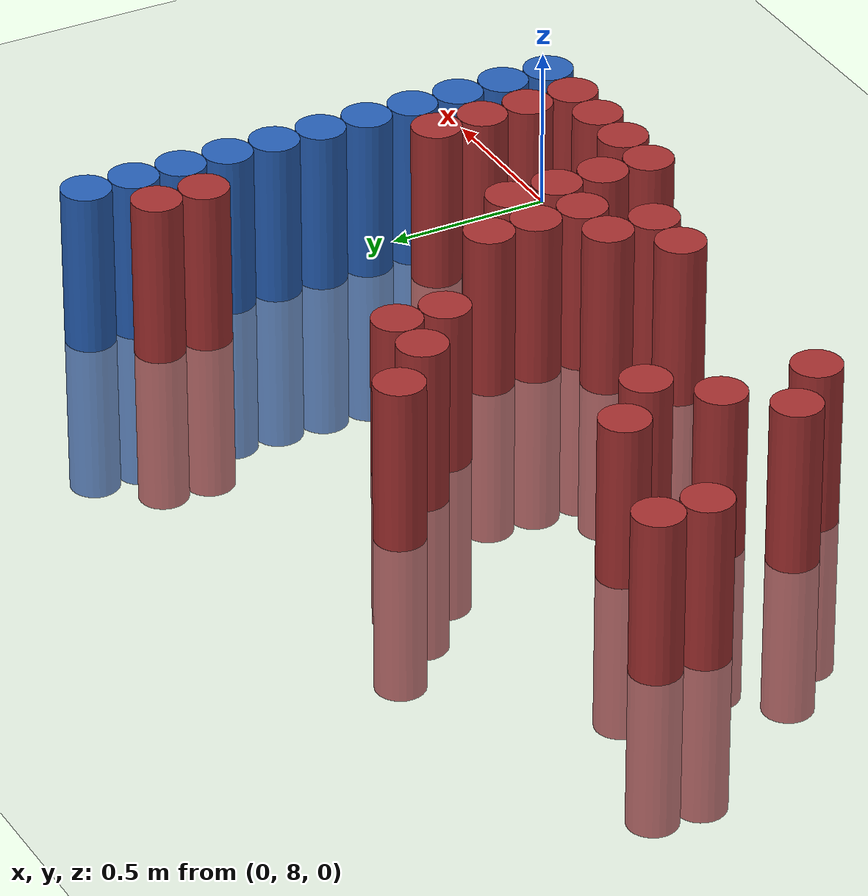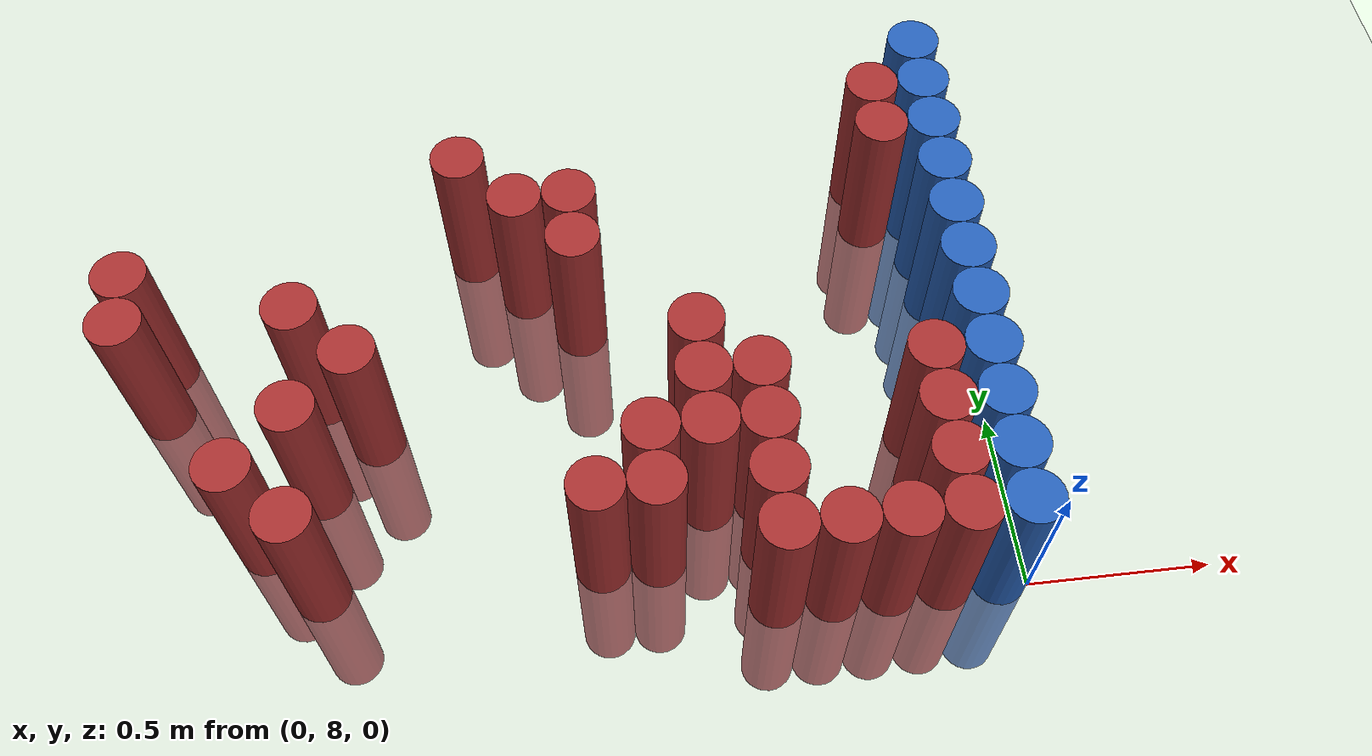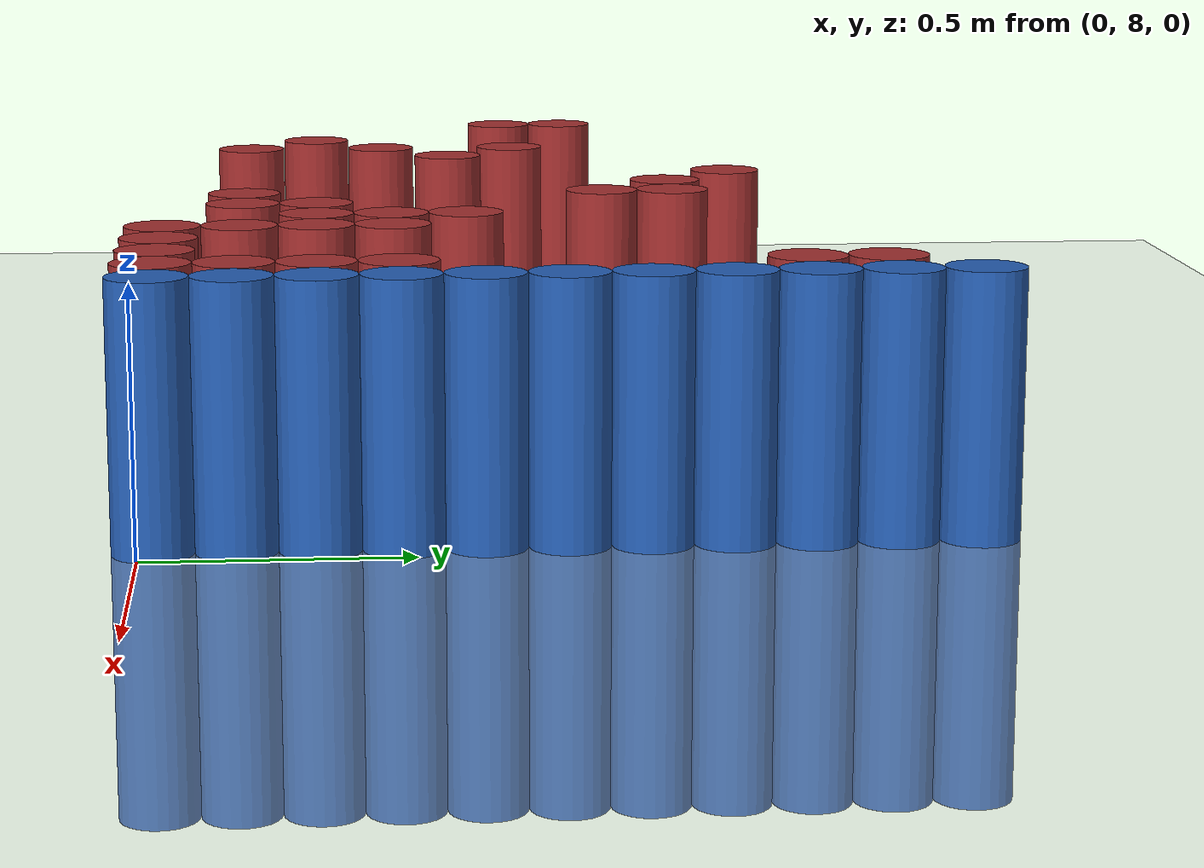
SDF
<sdf version="1.6">
 <world name="default">
  <model name="ground_plane">
   <static>1</static>
   <link name="link">
    <collision name="collision">
     <geometry><plane><normal>0 0 1</normal><size>100 100</size></plane></geometry>
     <surface><friction><ode><mu>100</mu><mu2>50</mu2></ode></friction></surface>
    </collision>
    <visual name="visual">
     <cast_shadows>0</cast_shadows>
     <geometry><plane><normal>0 0 1</normal><size>100 100</size></plane></geometry>
     <material>
      <script><uri>file://media/materials/scripts/gazebo.material</uri><name>Gazebo/Grey</name></script>
     </material>
    </visual>
   </link>
  </model>
  <model name="unit_cylinder_225">
   <static>1</static>
   <pose>-2.325000 8.775000 0.000000 0.000000 0.000000 0.000000</pose>
   <link name="link">
    <inertial>
     <mass>1</mass>
     <inertia><ixx>0.145833</ixx><ixy>0</ixy><ixz>0</ixz><iyy>0.145833</iyy><iyz>0</iyz><izz>0.125</izz></inertia>
    </inertial>
    <collision name="collision">
     <geometry><cylinder><radius>0.075000</radius><length>1</length></cylinder></geometry>
    </collision>
    <visual name="visual">
     <geometry><cylinder><radius>0.075000</radius><length>1</length></cylinder></geometry>
     <material>
      <ambient>0.648000 0.192000 0.192000 1</ambient>
      <diffuse>0.648000 0.192000 0.192000 1</diffuse>
     </material>
     <material>
      <script><name>Gazebo/Grey</name><uri>file://media/materials/scripts/gazebo.material</uri></script>
     </material>
    </visual>
    <sensor name="sensor_contact" type="contact"><contact><collision>collision</collision></contact></sensor>
   </link>
   <plugin filename="gz-sim-touchplugin-system" name="gz::sim::systems::TouchPlugin">
    <target>robot</target>
    <namespace>robot</namespace>
    <time>0.001</time>
    <enabled>true</enabled>
   </plugin>
  </model>
  <model name="unit_cylinder_226">
   <static>1</static>
   <pose>-2.325000 8.925000 0.000000 0.000000 0.000000 0.000000</pose>
   <link name="link">
    <inertial>
     <mass>1</mass>
     <inertia><ixx>0.145833</ixx><ixy>0</ixy><ixz>0</ixz><iyy>0.145833</iyy><iyz>0</iyz><izz>0.125</izz></inertia>
    </inertial>
    <collision name="collision">
     <geometry><cylinder><radius>0.075000</radius><length>1</length></cylinder></geometry>
    </collision>
    <visual name="visual">
     <geometry><cylinder><radius>0.075000</radius><length>1</length></cylinder></geometry>
     <material>
      <ambient>0.648000 0.192000 0.192000 1</ambient>
      <diffuse>0.648000 0.192000 0.192000 1</diffuse>
     </material>
     <material>
      <script><name>Gazebo/Grey</name><uri>file://media/materials/scripts/gazebo.material</uri></script>
     </material>
    </visual>
    <sensor name="sensor_contact" type="contact"><contact><collision>collision</collision></contact></sensor>
   </link>
   <plugin filename="gz-sim-touchplugin-system" name="gz::sim::systems::TouchPlugin">
    <target>robot</target>
    <namespace>robot</namespace>
    <time>0.001</time>
    <enabled>true</enabled>
   </plugin>
  </model>
  <model name="unit_cylinder_231">
   <static>1</static>
   <pose>-2.025000 8.325000 0.000000 0.000000 0.000000 0.000000</pose>
   <link name="link">
    <inertial>
     <mass>1</mass>
     <inertia><ixx>0.145833</ixx><ixy>0</ixy><ixz>0</ixz><iyy>0.145833</iyy><iyz>0</iyz><izz>0.125</izz></inertia>
    </inertial>
    <collision name="collision">
     <geometry><cylinder><radius>0.075000</radius><length>1</length></cylinder></geometry>
    </collision>
    <visual name="visual">
     <geometry><cylinder><radius>0.075000</radius><length>1</length></cylinder></geometry>
     <material>
      <ambient>0.648000 0.192000 0.192000 1</ambient>
      <diffuse>0.648000 0.192000 0.192000 1</diffuse>
     </material>
     <material>
      <script><name>Gazebo/Grey</name><uri>file://media/materials/scripts/gazebo.material</uri></script>
     </material>
    </visual>
    <sensor name="sensor_contact" type="contact"><contact><collision>collision</collision></contact></sensor>
   </link>
   <plugin filename="gz-sim-touchplugin-system" name="gz::sim::systems::TouchPlugin">
    <target>robot</target>
    <namespace>robot</namespace>
    <time>0.001</time>
    <enabled>true</enabled>
   </plugin>
  </model>
  <model name="unit_cylinder_234">
   <static>1</static>
   <pose>-1.875000 8.175000 0.000000 0.000000 0.000000 0.000000</pose>
   <link name="link">
    <inertial>
     <mass>1</mass>
     <inertia><ixx>0.145833</ixx><ixy>0</ixy><ixz>0</ixz><iyy>0.145833</iyy><iyz>0</iyz><izz>0.125</izz></inertia>
    </inertial>
    <collision name="collision">
     <geometry><cylinder><radius>0.075000</radius><length>1</length></cylinder></geometry>
    </collision>
    <visual name="visual">
     <geometry><cylinder><radius>0.075000</radius><length>1</length></cylinder></geometry>
     <material>
      <ambient>0.648000 0.192000 0.192000 1</ambient>
      <diffuse>0.648000 0.192000 0.192000 1</diffuse>
     </material>
     <material>
      <script><name>Gazebo/Grey</name><uri>file://media/materials/scripts/gazebo.material</uri></script>
     </material>
    </visual>
    <sensor name="sensor_contact" type="contact"><contact><collision>collision</collision></contact></sensor>
   </link>
   <plugin filename="gz-sim-touchplugin-system" name="gz::sim::systems::TouchPlugin">
    <target>robot</target>
    <namespace>robot</namespace>
    <time>0.001</time>
    <enabled>true</enabled>
   </plugin>
  </model>
  <model name="unit_cylinder_235">
   <static>1</static>
   <pose>-1.875000 8.475000 0.000000 0.000000 0.000000 0.000000</pose>
   <link name="link">
    <inertial>
     <mass>1</mass>
     <inertia><ixx>0.145833</ixx><ixy>0</ixy><ixz>0</ixz><iyy>0.145833</iyy><iyz>0</iyz><izz>0.125</izz></inertia>
    </inertial>
    <collision name="collision">
     <geometry><cylinder><radius>0.075000</radius><length>1</length></cylinder></geometry>
    </collision>
    <visual name="visual">
     <geometry><cylinder><radius>0.075000</radius><length>1</length></cylinder></geometry>
     <material>
      <ambient>0.648000 0.192000 0.192000 1</ambient>
      <diffuse>0.648000 0.192000 0.192000 1</diffuse>
     </material>
     <material>
      <script><name>Gazebo/Grey</name><uri>file://media/materials/scripts/gazebo.material</uri></script>
     </material>
    </visual>
    <sensor name="sensor_contact" type="contact"><contact><collision>collision</collision></contact></sensor>
   </link>
   <plugin filename="gz-sim-touchplugin-system" name="gz::sim::systems::TouchPlugin">
    <target>robot</target>
    <namespace>robot</namespace>
    <time>0.001</time>
    <enabled>true</enabled>
   </plugin>
  </model>
  <model name="unit_cylinder_236">
   <static>1</static>
   <pose>-1.875000 8.775000 0.000000 0.000000 0.000000 0.000000</pose>
   <link name="link">
    <inertial>
     <mass>1</mass>
     <inertia><ixx>0.145833</ixx><ixy>0</ixy><ixz>0</ixz><iyy>0.145833</iyy><iyz>0</iyz><izz>0.125</izz></inertia>
    </inertial>
    <collision name="collision">
     <geometry><cylinder><radius>0.075000</radius><length>1</length></cylinder></geometry>
    </collision>
    <visual name="visual">
     <geometry><cylinder><radius>0.075000</radius><length>1</length></cylinder></geometry>
     <material>
      <ambient>0.648000 0.192000 0.192000 1</ambient>
      <diffuse>0.648000 0.192000 0.192000 1</diffuse>
     </material>
     <material>
      <script><name>Gazebo/Grey</name><uri>file://media/materials/scripts/gazebo.material</uri></script>
     </material>
    </visual>
    <sensor name="sensor_contact" type="contact"><contact><collision>collision</collision></contact></sensor>
   </link>
   <plugin filename="gz-sim-touchplugin-system" name="gz::sim::systems::TouchPlugin">
    <target>robot</target>
    <namespace>robot</namespace>
    <time>0.001</time>
    <enabled>true</enabled>
   </plugin>
  </model>
  <model name="unit_cylinder_240">
   <static>1</static>
   <pose>-1.725000 8.625000 0.000000 0.000000 0.000000 0.000000</pose>
   <link name="link">
    <inertial>
     <mass>1</mass>
     <inertia><ixx>0.145833</ixx><ixy>0</ixy><ixz>0</ixz><iyy>0.145833</iyy><iyz>0</iyz><izz>0.125</izz></inertia>
    </inertial>
    <collision name="collision">
     <geometry><cylinder><radius>0.075000</radius><length>1</length></cylinder></geometry>
    </collision>
    <visual name="visual">
     <geometry><cylinder><radius>0.075000</radius><length>1</length></cylinder></geometry>
     <material>
      <ambient>0.648000 0.192000 0.192000 1</ambient>
      <diffuse>0.648000 0.192000 0.192000 1</diffuse>
     </material>
     <material>
      <script><name>Gazebo/Grey</name><uri>file://media/materials/scripts/gazebo.material</uri></script>
     </material>
    </visual>
    <sensor name="sensor_contact" type="contact"><contact><collision>collision</collision></contact></sensor>
   </link>
   <plugin filename="gz-sim-touchplugin-system" name="gz::sim::systems::TouchPlugin">
    <target>robot</target>
    <namespace>robot</namespace>
    <time>0.001</time>
    <enabled>true</enabled>
   </plugin>
  </model>
  <model name="unit_cylinder_244">
   <static>1</static>
   <pose>-1.425000 9.225000 0.000000 0.000000 0.000000 0.000000</pose>
   <link name="link">
    <inertial>
     <mass>1</mass>
     <inertia><ixx>0.145833</ixx><ixy>0</ixy><ixz>0</ixz><iyy>0.145833</iyy><iyz>0</iyz><izz>0.125</izz></inertia>
    </inertial>
    <collision name="collision">
     <geometry><cylinder><radius>0.075000</radius><length>1</length></cylinder></geometry>
    </collision>
    <visual name="visual">
     <geometry><cylinder><radius>0.075000</radius><length>1</length></cylinder></geometry>
     <material>
      <ambient>0.648000 0.192000 0.192000 1</ambient>
      <diffuse>0.648000 0.192000 0.192000 1</diffuse>
     </material>
     <material>
      <script><name>Gazebo/Grey</name><uri>file://media/materials/scripts/gazebo.material</uri></script>
     </material>
    </visual>
    <sensor name="sensor_contact" type="contact"><contact><collision>collision</collision></contact></sensor>
   </link>
   <plugin filename="gz-sim-touchplugin-system" name="gz::sim::systems::TouchPlugin">
    <target>robot</target>
    <namespace>robot</namespace>
    <time>0.001</time>
    <enabled>true</enabled>
   </plugin>
  </model>
  <model name="unit_cylinder_249">
   <static>1</static>
   <pose>-1.275000 9.075000 0.000000 0.000000 0.000000 0.000000</pose>
   <link name="link">
    <inertial>
     <mass>1</mass>
     <inertia><ixx>0.145833</ixx><ixy>0</ixy><ixz>0</ixz><iyy>0.145833</iyy><iyz>0</iyz><izz>0.125</izz></inertia>
    </inertial>
    <collision name="collision">
     <geometry><cylinder><radius>0.075000</radius><length>1</length></cylinder></geometry>
    </collision>
    <visual name="visual">
     <geometry><cylinder><radius>0.075000</radius><length>1</length></cylinder></geometry>
     <material>
      <ambient>0.648000 0.192000 0.192000 1</ambient>
      <diffuse>0.648000 0.192000 0.192000 1</diffuse>
     </material>
     <material>
      <script><name>Gazebo/Grey</name><uri>file://media/materials/scripts/gazebo.material</uri></script>
     </material>
    </visual>
    <sensor name="sensor_contact" type="contact"><contact><collision>collision</collision></contact></sensor>
   </link>
   <plugin filename="gz-sim-touchplugin-system" name="gz::sim::systems::TouchPlugin">
    <target>robot</target>
    <namespace>robot</namespace>
    <time>0.001</time>
    <enabled>true</enabled>
   </plugin>
  </model>
  <model name="unit_cylinder_253">
   <static>1</static>
   <pose>-1.125000 8.175000 0.000000 0.000000 0.000000 0.000000</pose>
   <link name="link">
    <inertial>
     <mass>1</mass>
     <inertia><ixx>0.145833</ixx><ixy>0</ixy><ixz>0</ixz><iyy>0.145833</iyy><iyz>0</iyz><izz>0.125</izz></inertia>
    </inertial>
    <collision name="collision">
     <geometry><cylinder><radius>0.075000</radius><length>1</length></cylinder></geometry>
    </collision>
    <visual name="visual">
     <geometry><cylinder><radius>0.075000</radius><length>1</length></cylinder></geometry>
     <material>
      <ambient>0.648000 0.192000 0.192000 1</ambient>
      <diffuse>0.648000 0.192000 0.192000 1</diffuse>
     </material>
     <material>
      <script><name>Gazebo/Grey</name><uri>file://media/materials/scripts/gazebo.material</uri></script>
     </material>
    </visual>
    <sensor name="sensor_contact" type="contact"><contact><collision>collision</collision></contact></sensor>
   </link>
   <plugin filename="gz-sim-touchplugin-system" name="gz::sim::systems::TouchPlugin">
    <target>robot</target>
    <namespace>robot</namespace>
    <time>0.001</time>
    <enabled>true</enabled>
   </plugin>
  </model>
  <model name="unit_cylinder_254">
   <static>1</static>
   <pose>-1.125000 8.925000 0.000000 0.000000 0.000000 0.000000</pose>
   <link name="link">
    <inertial>
     <mass>1</mass>
     <inertia><ixx>0.145833</ixx><ixy>0</ixy><ixz>0</ixz><iyy>0.145833</iyy><iyz>0</iyz><izz>0.125</izz></inertia>
    </inertial>
    <collision name="collision">
     <geometry><cylinder><radius>0.075000</radius><length>1</length></cylinder></geometry>
    </collision>
    <visual name="visual">
     <geometry><cylinder><radius>0.075000</radius><length>1</length></cylinder></geometry>
     <material>
      <ambient>0.648000 0.192000 0.192000 1</ambient>
      <diffuse>0.648000 0.192000 0.192000 1</diffuse>
     </material>
     <material>
      <script><name>Gazebo/Grey</name><uri>file://media/materials/scripts/gazebo.material</uri></script>
     </material>
    </visual>
    <sensor name="sensor_contact" type="contact"><contact><collision>collision</collision></contact></sensor>
   </link>
   <plugin filename="gz-sim-touchplugin-system" name="gz::sim::systems::TouchPlugin">
    <target>robot</target>
    <namespace>robot</namespace>
    <time>0.001</time>
    <enabled>true</enabled>
   </plugin>
  </model>
  <model name="unit_cylinder_255">
   <static>1</static>
   <pose>-1.125000 9.075000 0.000000 0.000000 0.000000 0.000000</pose>
   <link name="link">
    <inertial>
     <mass>1</mass>
     <inertia><ixx>0.145833</ixx><ixy>0</ixy><ixz>0</ixz><iyy>0.145833</iyy><iyz>0</iyz><izz>0.125</izz></inertia>
    </inertial>
    <collision name="collision">
     <geometry><cylinder><radius>0.075000</radius><length>1</length></cylinder></geometry>
    </collision>
    <visual name="visual">
     <geometry><cylinder><radius>0.075000</radius><length>1</length></cylinder></geometry>
     <material>
      <ambient>0.648000 0.192000 0.192000 1</ambient>
      <diffuse>0.648000 0.192000 0.192000 1</diffuse>
     </material>
     <material>
      <script><name>Gazebo/Grey</name><uri>file://media/materials/scripts/gazebo.material</uri></script>
     </material>
    </visual>
    <sensor name="sensor_contact" type="contact"><contact><collision>collision</collision></contact></sensor>
   </link>
   <plugin filename="gz-sim-touchplugin-system" name="gz::sim::systems::TouchPlugin">
    <target>robot</target>
    <namespace>robot</namespace>
    <time>0.001</time>
    <enabled>true</enabled>
   </plugin>
  </model>
  <model name="unit_cylinder_258">
   <static>1</static>
   <pose>-0.975000 8.175000 0.000000 0.000000 0.000000 0.000000</pose>
   <link name="link">
    <inertial>
     <mass>1</mass>
     <inertia><ixx>0.145833</ixx><ixy>0</ixy><ixz>0</ixz><iyy>0.145833</iyy><iyz>0</iyz><izz>0.125</izz></inertia>
    </inertial>
    <collision name="collision">
     <geometry><cylinder><radius>0.075000</radius><length>1</length></cylinder></geometry>
    </collision>
    <visual name="visual">
     <geometry><cylinder><radius>0.075000</radius><length>1</length></cylinder></geometry>
     <material>
      <ambient>0.648000 0.192000 0.192000 1</ambient>
      <diffuse>0.648000 0.192000 0.192000 1</diffuse>
     </material>
     <material>
      <script><name>Gazebo/Grey</name><uri>file://media/materials/scripts/gazebo.material</uri></script>
     </material>
    </visual>
    <sensor name="sensor_contact" type="contact"><contact><collision>collision</collision></contact></sensor>
   </link>
   <plugin filename="gz-sim-touchplugin-system" name="gz::sim::systems::TouchPlugin">
    <target>robot</target>
    <namespace>robot</namespace>
    <time>0.001</time>
    <enabled>true</enabled>
   </plugin>
  </model>
  <model name="unit_cylinder_259">
   <static>1</static>
   <pose>-0.975000 8.325000 0.000000 0.000000 0.000000 0.000000</pose>
   <link name="link">
    <inertial>
     <mass>1</mass>
     <inertia><ixx>0.145833</ixx><ixy>0</ixy><ixz>0</ixz><iyy>0.145833</iyy><iyz>0</iyz><izz>0.125</izz></inertia>
    </inertial>
    <collision name="collision">
     <geometry><cylinder><radius>0.075000</radius><length>1</length></cylinder></geometry>
    </collision>
    <visual name="visual">
     <geometry><cylinder><radius>0.075000</radius><length>1</length></cylinder></geometry>
     <material>
      <ambient>0.648000 0.192000 0.192000 1</ambient>
      <diffuse>0.648000 0.192000 0.192000 1</diffuse>
     </material>
     <material>
      <script><name>Gazebo/Grey</name><uri>file://media/materials/scripts/gazebo.material</uri></script>
     </material>
    </visual>
    <sensor name="sensor_contact" type="contact"><contact><collision>collision</collision></contact></sensor>
   </link>
   <plugin filename="gz-sim-touchplugin-system" name="gz::sim::systems::TouchPlugin">
    <target>robot</target>
    <namespace>robot</namespace>
    <time>0.001</time>
    <enabled>true</enabled>
   </plugin>
  </model>
  <model name="unit_cylinder_263">
   <static>1</static>
   <pose>-0.825000 8.325000 0.000000 0.000000 0.000000 0.000000</pose>
   <link name="link">
    <inertial>
     <mass>1</mass>
     <inertia><ixx>0.145833</ixx><ixy>0</ixy><ixz>0</ixz><iyy>0.145833</iyy><iyz>0</iyz><izz>0.125</izz></inertia>
    </inertial>
    <collision name="collision">
     <geometry><cylinder><radius>0.075000</radius><length>1</length></cylinder></geometry>
    </collision>
    <visual name="visual">
     <geometry><cylinder><radius>0.075000</radius><length>1</length></cylinder></geometry>
     <material>
      <ambient>0.648000 0.192000 0.192000 1</ambient>
      <diffuse>0.648000 0.192000 0.192000 1</diffuse>
     </material>
     <material>
      <script><name>Gazebo/Grey</name><uri>file://media/materials/scripts/gazebo.material</uri></script>
     </material>
    </visual>
    <sensor name="sensor_contact" type="contact"><contact><collision>collision</collision></contact></sensor>
   </link>
   <plugin filename="gz-sim-touchplugin-system" name="gz::sim::systems::TouchPlugin">
    <target>robot</target>
    <namespace>robot</namespace>
    <time>0.001</time>
    <enabled>true</enabled>
   </plugin>
  </model>
  <model name="unit_cylinder_264">
   <static>1</static>
   <pose>-0.825000 8.475000 0.000000 0.000000 0.000000 0.000000</pose>
   <link name="link">
    <inertial>
     <mass>1</mass>
     <inertia><ixx>0.145833</ixx><ixy>0</ixy><ixz>0</ixz><iyy>0.145833</iyy><iyz>0</iyz><izz>0.125</izz></inertia>
    </inertial>
    <collision name="collision">
     <geometry><cylinder><radius>0.075000</radius><length>1</length></cylinder></geometry>
    </collision>
    <visual name="visual">
     <geometry><cylinder><radius>0.075000</radius><length>1</length></cylinder></geometry>
     <material>
      <ambient>0.648000 0.192000 0.192000 1</ambient>
      <diffuse>0.648000 0.192000 0.192000 1</diffuse>
     </material>
     <material>
      <script><name>Gazebo/Grey</name><uri>file://media/materials/scripts/gazebo.material</uri></script>
     </material>
    </visual>
    <sensor name="sensor_contact" type="contact"><contact><collision>collision</collision></contact></sensor>
   </link>
   <plugin filename="gz-sim-touchplugin-system" name="gz::sim::systems::TouchPlugin">
    <target>robot</target>
    <namespace>robot</namespace>
    <time>0.001</time>
    <enabled>true</enabled>
   </plugin>
  </model>
  <model name="unit_cylinder_265">
   <static>1</static>
   <pose>-0.825000 8.625000 0.000000 0.000000 0.000000 0.000000</pose>
   <link name="link">
    <inertial>
     <mass>1</mass>
     <inertia><ixx>0.145833</ixx><ixy>0</ixy><ixz>0</ixz><iyy>0.145833</iyy><iyz>0</iyz><izz>0.125</izz></inertia>
    </inertial>
    <collision name="collision">
     <geometry><cylinder><radius>0.075000</radius><length>1</length></cylinder></geometry>
    </collision>
    <visual name="visual">
     <geometry><cylinder><radius>0.075000</radius><length>1</length></cylinder></geometry>
     <material>
      <ambient>0.648000 0.192000 0.192000 1</ambient>
      <diffuse>0.648000 0.192000 0.192000 1</diffuse>
     </material>
     <material>
      <script><name>Gazebo/Grey</name><uri>file://media/materials/scripts/gazebo.material</uri></script>
     </material>
    </visual>
    <sensor name="sensor_contact" type="contact"><contact><collision>collision</collision></contact></sensor>
   </link>
   <plugin filename="gz-sim-touchplugin-system" name="gz::sim::systems::TouchPlugin">
    <target>robot</target>
    <namespace>robot</namespace>
    <time>0.001</time>
    <enabled>true</enabled>
   </plugin>
  </model>
  <model name="unit_cylinder_268">
   <static>1</static>
   <pose>-0.675000 8.025000 0.000000 0.000000 0.000000 0.000000</pose>
   <link name="link">
    <inertial>
     <mass>1</mass>
     <inertia><ixx>0.145833</ixx><ixy>0</ixy><ixz>0</ixz><iyy>0.145833</iyy><iyz>0</iyz><izz>0.125</izz></inertia>
    </inertial>
    <collision name="collision">
     <geometry><cylinder><radius>0.075000</radius><length>1</length></cylinder></geometry>
    </collision>
    <visual name="visual">
     <geometry><cylinder><radius>0.075000</radius><length>1</length></cylinder></geometry>
     <material>
      <ambient>0.648000 0.192000 0.192000 1</ambient>
      <diffuse>0.648000 0.192000 0.192000 1</diffuse>
     </material>
     <material>
      <script><name>Gazebo/Grey</name><uri>file://media/materials/scripts/gazebo.material</uri></script>
     </material>
    </visual>
    <sensor name="sensor_contact" type="contact"><contact><collision>collision</collision></contact></sensor>
   </link>
   <plugin filename="gz-sim-touchplugin-system" name="gz::sim::systems::TouchPlugin">
    <target>robot</target>
    <namespace>robot</namespace>
    <time>0.001</time>
    <enabled>true</enabled>
   </plugin>
  </model>
  <model name="unit_cylinder_269">
   <static>1</static>
   <pose>-0.675000 8.175000 0.000000 0.000000 0.000000 0.000000</pose>
   <link name="link">
    <inertial>
     <mass>1</mass>
     <inertia><ixx>0.145833</ixx><ixy>0</ixy><ixz>0</ixz><iyy>0.145833</iyy><iyz>0</iyz><izz>0.125</izz></inertia>
    </inertial>
    <collision name="collision">
     <geometry><cylinder><radius>0.075000</radius><length>1</length></cylinder></geometry>
    </collision>
    <visual name="visual">
     <geometry><cylinder><radius>0.075000</radius><length>1</length></cylinder></geometry>
     <material>
      <ambient>0.648000 0.192000 0.192000 1</ambient>
      <diffuse>0.648000 0.192000 0.192000 1</diffuse>
     </material>
     <material>
      <script><name>Gazebo/Grey</name><uri>file://media/materials/scripts/gazebo.material</uri></script>
     </material>
    </visual>
    <sensor name="sensor_contact" type="contact"><contact><collision>collision</collision></contact></sensor>
   </link>
   <plugin filename="gz-sim-touchplugin-system" name="gz::sim::systems::TouchPlugin">
    <target>robot</target>
    <namespace>robot</namespace>
    <time>0.001</time>
    <enabled>true</enabled>
   </plugin>
  </model>
  <model name="unit_cylinder_270">
   <static>1</static>
   <pose>-0.675000 8.325000 0.000000 0.000000 0.000000 0.000000</pose>
   <link name="link">
    <inertial>
     <mass>1</mass>
     <inertia><ixx>0.145833</ixx><ixy>0</ixy><ixz>0</ixz><iyy>0.145833</iyy><iyz>0</iyz><izz>0.125</izz></inertia>
    </inertial>
    <collision name="collision">
     <geometry><cylinder><radius>0.075000</radius><length>1</length></cylinder></geometry>
    </collision>
    <visual name="visual">
     <geometry><cylinder><radius>0.075000</radius><length>1</length></cylinder></geometry>
     <material>
      <ambient>0.648000 0.192000 0.192000 1</ambient>
      <diffuse>0.648000 0.192000 0.192000 1</diffuse>
     </material>
     <material>
      <script><name>Gazebo/Grey</name><uri>file://media/materials/scripts/gazebo.material</uri></script>
     </material>
    </visual>
    <sensor name="sensor_contact" type="contact"><contact><collision>collision</collision></contact></sensor>
   </link>
   <plugin filename="gz-sim-touchplugin-system" name="gz::sim::systems::TouchPlugin">
    <target>robot</target>
    <namespace>robot</namespace>
    <time>0.001</time>
    <enabled>true</enabled>
   </plugin>
  </model>
  <model name="unit_cylinder_271">
   <static>1</static>
   <pose>-0.675000 8.475000 0.000000 0.000000 0.000000 0.000000</pose>
   <link name="link">
    <inertial>
     <mass>1</mass>
     <inertia><ixx>0.145833</ixx><ixy>0</ixy><ixz>0</ixz><iyy>0.145833</iyy><iyz>0</iyz><izz>0.125</izz></inertia>
    </inertial>
    <collision name="collision">
     <geometry><cylinder><radius>0.075000</radius><length>1</length></cylinder></geometry>
    </collision>
    <visual name="visual">
     <geometry><cylinder><radius>0.075000</radius><length>1</length></cylinder></geometry>
     <material>
      <ambient>0.648000 0.192000 0.192000 1</ambient>
      <diffuse>0.648000 0.192000 0.192000 1</diffuse>
     </material>
     <material>
      <script><name>Gazebo/Grey</name><uri>file://media/materials/scripts/gazebo.material</uri></script>
     </material>
    </visual>
    <sensor name="sensor_contact" type="contact"><contact><collision>collision</collision></contact></sensor>
   </link>
   <plugin filename="gz-sim-touchplugin-system" name="gz::sim::systems::TouchPlugin">
    <target>robot</target>
    <namespace>robot</namespace>
    <time>0.001</time>
    <enabled>true</enabled>
   </plugin>
  </model>
  <model name="unit_cylinder_273">
   <static>1</static>
   <pose>-0.525000 8.025000 0.000000 0.000000 0.000000 0.000000</pose>
   <link name="link">
    <inertial>
     <mass>1</mass>
     <inertia><ixx>0.145833</ixx><ixy>0</ixy><ixz>0</ixz><iyy>0.145833</iyy><iyz>0</iyz><izz>0.125</izz></inertia>
    </inertial>
    <collision name="collision">
     <geometry><cylinder><radius>0.075000</radius><length>1</length></cylinder></geometry>
    </collision>
    <visual name="visual">
     <geometry><cylinder><radius>0.075000</radius><length>1</length></cylinder></geometry>
     <material>
      <ambient>0.648000 0.192000 0.192000 1</ambient>
      <diffuse>0.648000 0.192000 0.192000 1</diffuse>
     </material>
     <material>
      <script><name>Gazebo/Grey</name><uri>file://media/materials/scripts/gazebo.material</uri></script>
     </material>
    </visual>
    <sensor name="sensor_contact" type="contact"><contact><collision>collision</collision></contact></sensor>
   </link>
   <plugin filename="gz-sim-touchplugin-system" name="gz::sim::systems::TouchPlugin">
    <target>robot</target>
    <namespace>robot</namespace>
    <time>0.001</time>
    <enabled>true</enabled>
   </plugin>
  </model>
  <model name="unit_cylinder_276">
   <static>1</static>
   <pose>-0.375000 8.025000 0.000000 0.000000 0.000000 0.000000</pose>
   <link name="link">
    <inertial>
     <mass>1</mass>
     <inertia><ixx>0.145833</ixx><ixy>0</ixy><ixz>0</ixz><iyy>0.145833</iyy><iyz>0</iyz><izz>0.125</izz></inertia>
    </inertial>
    <collision name="collision">
     <geometry><cylinder><radius>0.075000</radius><length>1</length></cylinder></geometry>
    </collision>
    <visual name="visual">
     <geometry><cylinder><radius>0.075000</radius><length>1</length></cylinder></geometry>
     <material>
      <ambient>0.648000 0.192000 0.192000 1</ambient>
      <diffuse>0.648000 0.192000 0.192000 1</diffuse>
     </material>
     <material>
      <script><name>Gazebo/Grey</name><uri>file://media/materials/scripts/gazebo.material</uri></script>
     </material>
    </visual>
    <sensor name="sensor_contact" type="contact"><contact><collision>collision</collision></contact></sensor>
   </link>
   <plugin filename="gz-sim-touchplugin-system" name="gz::sim::systems::TouchPlugin">
    <target>robot</target>
    <namespace>robot</namespace>
    <time>0.001</time>
    <enabled>true</enabled>
   </plugin>
  </model>
  <model name="unit_cylinder_285">
   <static>1</static>
   <pose>-0.225000 8.025000 0.000000 0.000000 0.000000 0.000000</pose>
   <link name="link">
    <inertial>
     <mass>1</mass>
     <inertia><ixx>0.145833</ixx><ixy>0</ixy><ixz>0</ixz><iyy>0.145833</iyy><iyz>0</iyz><izz>0.125</izz></inertia>
    </inertial>
    <collision name="collision">
     <geometry><cylinder><radius>0.075000</radius><length>1</length></cylinder></geometry>
    </collision>
    <visual name="visual">
     <geometry><cylinder><radius>0.075000</radius><length>1</length></cylinder></geometry>
     <material>
      <ambient>0.648000 0.192000 0.192000 1</ambient>
      <diffuse>0.648000 0.192000 0.192000 1</diffuse>
     </material>
     <material>
      <script><name>Gazebo/Grey</name><uri>file://media/materials/scripts/gazebo.material</uri></script>
     </material>
    </visual>
    <sensor name="sensor_contact" type="contact"><contact><collision>collision</collision></contact></sensor>
   </link>
   <plugin filename="gz-sim-touchplugin-system" name="gz::sim::systems::TouchPlugin">
    <target>robot</target>
    <namespace>robot</namespace>
    <time>0.001</time>
    <enabled>true</enabled>
   </plugin>
  </model>
  <model name="unit_cylinder_286">
   <static>1</static>
   <pose>-0.225000 8.175000 0.000000 0.000000 0.000000 0.000000</pose>
   <link name="link">
    <inertial>
     <mass>1</mass>
     <inertia><ixx>0.145833</ixx><ixy>0</ixy><ixz>0</ixz><iyy>0.145833</iyy><iyz>0</iyz><izz>0.125</izz></inertia>
    </inertial>
    <collision name="collision">
     <geometry><cylinder><radius>0.075000</radius><length>1</length></cylinder></geometry>
    </collision>
    <visual name="visual">
     <geometry><cylinder><radius>0.075000</radius><length>1</length></cylinder></geometry>
     <material>
      <ambient>0.648000 0.192000 0.192000 1</ambient>
      <diffuse>0.648000 0.192000 0.192000 1</diffuse>
     </material>
     <material>
      <script><name>Gazebo/Grey</name><uri>file://media/materials/scripts/gazebo.material</uri></script>
     </material>
    </visual>
    <sensor name="sensor_contact" type="contact"><contact><collision>collision</collision></contact></sensor>
   </link>
   <plugin filename="gz-sim-touchplugin-system" name="gz::sim::systems::TouchPlugin">
    <target>robot</target>
    <namespace>robot</namespace>
    <time>0.001</time>
    <enabled>true</enabled>
   </plugin>
  </model>
  <model name="unit_cylinder_287">
   <static>1</static>
   <pose>-0.225000 8.325000 0.000000 0.000000 0.000000 0.000000</pose>
   <link name="link">
    <inertial>
     <mass>1</mass>
     <inertia><ixx>0.145833</ixx><ixy>0</ixy><ixz>0</ixz><iyy>0.145833</iyy><iyz>0</iyz><izz>0.125</izz></inertia>
    </inertial>
    <collision name="collision">
     <geometry><cylinder><radius>0.075000</radius><length>1</length></cylinder></geometry>
    </collision>
    <visual name="visual">
     <geometry><cylinder><radius>0.075000</radius><length>1</length></cylinder></geometry>
     <material>
      <ambient>0.648000 0.192000 0.192000 1</ambient>
      <diffuse>0.648000 0.192000 0.192000 1</diffuse>
     </material>
     <material>
      <script><name>Gazebo/Grey</name><uri>file://media/materials/scripts/gazebo.material</uri></script>
     </material>
    </visual>
    <sensor name="sensor_contact" type="contact"><contact><collision>collision</collision></contact></sensor>
   </link>
   <plugin filename="gz-sim-touchplugin-system" name="gz::sim::systems::TouchPlugin">
    <target>robot</target>
    <namespace>robot</namespace>
    <time>0.001</time>
    <enabled>true</enabled>
   </plugin>
  </model>
  <model name="unit_cylinder_288">
   <static>1</static>
   <pose>-0.225000 8.475000 0.000000 0.000000 0.000000 0.000000</pose>
   <link name="link">
    <inertial>
     <mass>1</mass>
     <inertia><ixx>0.145833</ixx><ixy>0</ixy><ixz>0</ixz><iyy>0.145833</iyy><iyz>0</iyz><izz>0.125</izz></inertia>
    </inertial>
    <collision name="collision">
     <geometry><cylinder><radius>0.075000</radius><length>1</length></cylinder></geometry>
    </collision>
    <visual name="visual">
     <geometry><cylinder><radius>0.075000</radius><length>1</length></cylinder></geometry>
     <material>
      <ambient>0.648000 0.192000 0.192000 1</ambient>
      <diffuse>0.648000 0.192000 0.192000 1</diffuse>
     </material>
     <material>
      <script><name>Gazebo/Grey</name><uri>file://media/materials/scripts/gazebo.material</uri></script>
     </material>
    </visual>
    <sensor name="sensor_contact" type="contact"><contact><collision>collision</collision></contact></sensor>
   </link>
   <plugin filename="gz-sim-touchplugin-system" name="gz::sim::systems::TouchPlugin">
    <target>robot</target>
    <namespace>robot</namespace>
    <time>0.001</time>
    <enabled>true</enabled>
   </plugin>
  </model>
  <model name="unit_cylinder_289">
   <static>1</static>
   <pose>-0.225000 9.225000 0.000000 0.000000 0.000000 0.000000</pose>
   <link name="link">
    <inertial>
     <mass>1</mass>
     <inertia><ixx>0.145833</ixx><ixy>0</ixy><ixz>0</ixz><iyy>0.145833</iyy><iyz>0</iyz><izz>0.125</izz></inertia>
    </inertial>
    <collision name="collision">
     <geometry><cylinder><radius>0.075000</radius><length>1</length></cylinder></geometry>
    </collision>
    <visual name="visual">
     <geometry><cylinder><radius>0.075000</radius><length>1</length></cylinder></geometry>
     <material>
      <ambient>0.648000 0.192000 0.192000 1</ambient>
      <diffuse>0.648000 0.192000 0.192000 1</diffuse>
     </material>
     <material>
      <script><name>Gazebo/Grey</name><uri>file://media/materials/scripts/gazebo.material</uri></script>
     </material>
    </visual>
    <sensor name="sensor_contact" type="contact"><contact><collision>collision</collision></contact></sensor>
   </link>
   <plugin filename="gz-sim-touchplugin-system" name="gz::sim::systems::TouchPlugin">
    <target>robot</target>
    <namespace>robot</namespace>
    <time>0.001</time>
    <enabled>true</enabled>
   </plugin>
  </model>
  <model name="unit_cylinder_290">
   <static>1</static>
   <pose>-0.225000 9.375000 0.000000 0.000000 0.000000 0.000000</pose>
   <link name="link">
    <inertial>
     <mass>1</mass>
     <inertia><ixx>0.145833</ixx><ixy>0</ixy><ixz>0</ixz><iyy>0.145833</iyy><iyz>0</iyz><izz>0.125</izz></inertia>
    </inertial>
    <collision name="collision">
     <geometry><cylinder><radius>0.075000</radius><length>1</length></cylinder></geometry>
    </collision>
    <visual name="visual">
     <geometry><cylinder><radius>0.075000</radius><length>1</length></cylinder></geometry>
     <material>
      <ambient>0.648000 0.192000 0.192000 1</ambient>
      <diffuse>0.648000 0.192000 0.192000 1</diffuse>
     </material>
     <material>
      <script><name>Gazebo/Grey</name><uri>file://media/materials/scripts/gazebo.material</uri></script>
     </material>
    </visual>
    <sensor name="sensor_contact" type="contact"><contact><collision>collision</collision></contact></sensor>
   </link>
   <plugin filename="gz-sim-touchplugin-system" name="gz::sim::systems::TouchPlugin">
    <target>robot</target>
    <namespace>robot</namespace>
    <time>0.001</time>
    <enabled>true</enabled>
   </plugin>
  </model>
  <model name="unit_cylinder_310">
   <static>1</static>
   <pose>-0.075000 8.025000 0.000000 0.000000 0.000000 0.000000</pose>
   <link name="link">
    <inertial>
     <mass>1</mass>
     <inertia><ixx>0.145833</ixx><ixy>0</ixy><ixz>0</ixz><iyy>0.145833</iyy><iyz>0</iyz><izz>0.125</izz></inertia>
    </inertial>
    <collision name="collision">
     <geometry><cylinder><radius>0.075000</radius><length>1</length></cylinder></geometry>
    </collision>
    <visual name="visual">
     <geometry><cylinder><radius>0.075000</radius><length>1</length></cylinder></geometry>
     <material>
      <ambient>0.152000 0.379000 0.720000 1</ambient>
      <diffuse>0.152000 0.379000 0.720000 1</diffuse>
     </material>
     <material>
      <script><name>Gazebo/Grey</name><uri>file://media/materials/scripts/gazebo.material</uri></script>
     </material>
    </visual>
    <sensor name="sensor_contact" type="contact"><contact><collision>collision</collision></contact></sensor>
   </link>
   <plugin filename="gz-sim-touchplugin-system" name="gz::sim::systems::TouchPlugin">
    <target>robot</target>
    <namespace>robot</namespace>
    <time>0.001</time>
    <enabled>true</enabled>
   </plugin>
  </model>
  <model name="unit_cylinder_311">
   <static>1</static>
   <pose>-0.075000 8.175000 0.000000 0.000000 0.000000 0.000000</pose>
   <link name="link">
    <inertial>
     <mass>1</mass>
     <inertia><ixx>0.145833</ixx><ixy>0</ixy><ixz>0</ixz><iyy>0.145833</iyy><iyz>0</iyz><izz>0.125</izz></inertia>
    </inertial>
    <collision name="collision">
     <geometry><cylinder><radius>0.075000</radius><length>1</length></cylinder></geometry>
    </collision>
    <visual name="visual">
     <geometry><cylinder><radius>0.075000</radius><length>1</length></cylinder></geometry>
     <material>
      <ambient>0.152000 0.379000 0.720000 1</ambient>
      <diffuse>0.152000 0.379000 0.720000 1</diffuse>
     </material>
     <material>
      <script><name>Gazebo/Grey</name><uri>file://media/materials/scripts/gazebo.material</uri></script>
     </material>
    </visual>
    <sensor name="sensor_contact" type="contact"><contact><collision>collision</collision></contact></sensor>
   </link>
   <plugin filename="gz-sim-touchplugin-system" name="gz::sim::systems::TouchPlugin">
    <target>robot</target>
    <namespace>robot</namespace>
    <time>0.001</time>
    <enabled>true</enabled>
   </plugin>
  </model>
  <model name="unit_cylinder_312">
   <static>1</static>
   <pose>-0.075000 8.325000 0.000000 0.000000 0.000000 0.000000</pose>
   <link name="link">
    <inertial>
     <mass>1</mass>
     <inertia><ixx>0.145833</ixx><ixy>0</ixy><ixz>0</ixz><iyy>0.145833</iyy><iyz>0</iyz><izz>0.125</izz></inertia>
    </inertial>
    <collision name="collision">
     <geometry><cylinder><radius>0.075000</radius><length>1</length></cylinder></geometry>
    </collision>
    <visual name="visual">
     <geometry><cylinder><radius>0.075000</radius><length>1</length></cylinder></geometry>
     <material>
      <ambient>0.152000 0.379000 0.720000 1</ambient>
      <diffuse>0.152000 0.379000 0.720000 1</diffuse>
     </material>
     <material>
      <script><name>Gazebo/Grey</name><uri>file://media/materials/scripts/gazebo.material</uri></script>
     </material>
    </visual>
    <sensor name="sensor_contact" type="contact"><contact><collision>collision</collision></contact></sensor>
   </link>
   <plugin filename="gz-sim-touchplugin-system" name="gz::sim::systems::TouchPlugin">
    <target>robot</target>
    <namespace>robot</namespace>
    <time>0.001</time>
    <enabled>true</enabled>
   </plugin>
  </model>
  <model name="unit_cylinder_313">
   <static>1</static>
   <pose>-0.075000 8.475000 0.000000 0.000000 0.000000 0.000000</pose>
   <link name="link">
    <inertial>
     <mass>1</mass>
     <inertia><ixx>0.145833</ixx><ixy>0</ixy><ixz>0</ixz><iyy>0.145833</iyy><iyz>0</iyz><izz>0.125</izz></inertia>
    </inertial>
    <collision name="collision">
     <geometry><cylinder><radius>0.075000</radius><length>1</length></cylinder></geometry>
    </collision>
    <visual name="visual">
     <geometry><cylinder><radius>0.075000</radius><length>1</length></cylinder></geometry>
     <material>
      <ambient>0.152000 0.379000 0.720000 1</ambient>
      <diffuse>0.152000 0.379000 0.720000 1</diffuse>
     </material>
     <material>
      <script><name>Gazebo/Grey</name><uri>file://media/materials/scripts/gazebo.material</uri></script>
     </material>
    </visual>
    <sensor name="sensor_contact" type="contact"><contact><collision>collision</collision></contact></sensor>
   </link>
   <plugin filename="gz-sim-touchplugin-system" name="gz::sim::systems::TouchPlugin">
    <target>robot</target>
    <namespace>robot</namespace>
    <time>0.001</time>
    <enabled>true</enabled>
   </plugin>
  </model>
  <model name="unit_cylinder_314">
   <static>1</static>
   <pose>-0.075000 8.625000 0.000000 0.000000 0.000000 0.000000</pose>
   <link name="link">
    <inertial>
     <mass>1</mass>
     <inertia><ixx>0.145833</ixx><ixy>0</ixy><ixz>0</ixz><iyy>0.145833</iyy><iyz>0</iyz><izz>0.125</izz></inertia>
    </inertial>
    <collision name="collision">
     <geometry><cylinder><radius>0.075000</radius><length>1</length></cylinder></geometry>
    </collision>
    <visual name="visual">
     <geometry><cylinder><radius>0.075000</radius><length>1</length></cylinder></geometry>
     <material>
      <ambient>0.152000 0.379000 0.720000 1</ambient>
      <diffuse>0.152000 0.379000 0.720000 1</diffuse>
     </material>
     <material>
      <script><name>Gazebo/Grey</name><uri>file://media/materials/scripts/gazebo.material</uri></script>
     </material>
    </visual>
    <sensor name="sensor_contact" type="contact"><contact><collision>collision</collision></contact></sensor>
   </link>
   <plugin filename="gz-sim-touchplugin-system" name="gz::sim::systems::TouchPlugin">
    <target>robot</target>
    <namespace>robot</namespace>
    <time>0.001</time>
    <enabled>true</enabled>
   </plugin>
  </model>
  <model name="unit_cylinder_315">
   <static>1</static>
   <pose>-0.075000 8.775000 0.000000 0.000000 0.000000 0.000000</pose>
   <link name="link">
    <inertial>
     <mass>1</mass>
     <inertia><ixx>0.145833</ixx><ixy>0</ixy><ixz>0</ixz><iyy>0.145833</iyy><iyz>0</iyz><izz>0.125</izz></inertia>
    </inertial>
    <collision name="collision">
     <geometry><cylinder><radius>0.075000</radius><length>1</length></cylinder></geometry>
    </collision>
    <visual name="visual">
     <geometry><cylinder><radius>0.075000</radius><length>1</length></cylinder></geometry>
     <material>
      <ambient>0.152000 0.379000 0.720000 1</ambient>
      <diffuse>0.152000 0.379000 0.720000 1</diffuse>
     </material>
     <material>
      <script><name>Gazebo/Grey</name><uri>file://media/materials/scripts/gazebo.material</uri></script>
     </material>
    </visual>
    <sensor name="sensor_contact" type="contact"><contact><collision>collision</collision></contact></sensor>
   </link>
   <plugin filename="gz-sim-touchplugin-system" name="gz::sim::systems::TouchPlugin">
    <target>robot</target>
    <namespace>robot</namespace>
    <time>0.001</time>
    <enabled>true</enabled>
   </plugin>
  </model>
  <model name="unit_cylinder_316">
   <static>1</static>
   <pose>-0.075000 8.925000 0.000000 0.000000 0.000000 0.000000</pose>
   <link name="link">
    <inertial>
     <mass>1</mass>
     <inertia><ixx>0.145833</ixx><ixy>0</ixy><ixz>0</ixz><iyy>0.145833</iyy><iyz>0</iyz><izz>0.125</izz></inertia>
    </inertial>
    <collision name="collision">
     <geometry><cylinder><radius>0.075000</radius><length>1</length></cylinder></geometry>
    </collision>
    <visual name="visual">
     <geometry><cylinder><radius>0.075000</radius><length>1</length></cylinder></geometry>
     <material>
      <ambient>0.152000 0.379000 0.720000 1</ambient>
      <diffuse>0.152000 0.379000 0.720000 1</diffuse>
     </material>
     <material>
      <script><name>Gazebo/Grey</name><uri>file://media/materials/scripts/gazebo.material</uri></script>
     </material>
    </visual>
    <sensor name="sensor_contact" type="contact"><contact><collision>collision</collision></contact></sensor>
   </link>
   <plugin filename="gz-sim-touchplugin-system" name="gz::sim::systems::TouchPlugin">
    <target>robot</target>
    <namespace>robot</namespace>
    <time>0.001</time>
    <enabled>true</enabled>
   </plugin>
  </model>
  <model name="unit_cylinder_317">
   <static>1</static>
   <pose>-0.075000 9.075000 0.000000 0.000000 0.000000 0.000000</pose>
   <link name="link">
    <inertial>
     <mass>1</mass>
     <inertia><ixx>0.145833</ixx><ixy>0</ixy><ixz>0</ixz><iyy>0.145833</iyy><iyz>0</iyz><izz>0.125</izz></inertia>
    </inertial>
    <collision name="collision">
     <geometry><cylinder><radius>0.075000</radius><length>1</length></cylinder></geometry>
    </collision>
    <visual name="visual">
     <geometry><cylinder><radius>0.075000</radius><length>1</length></cylinder></geometry>
     <material>
      <ambient>0.152000 0.379000 0.720000 1</ambient>
      <diffuse>0.152000 0.379000 0.720000 1</diffuse>
     </material>
     <material>
      <script><name>Gazebo/Grey</name><uri>file://media/materials/scripts/gazebo.material</uri></script>
     </material>
    </visual>
    <sensor name="sensor_contact" type="contact"><contact><collision>collision</collision></contact></sensor>
   </link>
   <plugin filename="gz-sim-touchplugin-system" name="gz::sim::systems::TouchPlugin">
    <target>robot</target>
    <namespace>robot</namespace>
    <time>0.001</time>
    <enabled>true</enabled>
   </plugin>
  </model>
  <model name="unit_cylinder_318">
   <static>1</static>
   <pose>-0.075000 9.225000 0.000000 0.000000 0.000000 0.000000</pose>
   <link name="link">
    <inertial>
     <mass>1</mass>
     <inertia><ixx>0.145833</ixx><ixy>0</ixy><ixz>0</ixz><iyy>0.145833</iyy><iyz>0</iyz><izz>0.125</izz></inertia>
    </inertial>
    <collision name="collision">
     <geometry><cylinder><radius>0.075000</radius><length>1</length></cylinder></geometry>
    </collision>
    <visual name="visual">
     <geometry><cylinder><radius>0.075000</radius><length>1</length></cylinder></geometry>
     <material>
      <ambient>0.152000 0.379000 0.720000 1</ambient>
      <diffuse>0.152000 0.379000 0.720000 1</diffuse>
     </material>
     <material>
      <script><name>Gazebo/Grey</name><uri>file://media/materials/scripts/gazebo.material</uri></script>
     </material>
    </visual>
    <sensor name="sensor_contact" type="contact"><contact><collision>collision</collision></contact></sensor>
   </link>
   <plugin filename="gz-sim-touchplugin-system" name="gz::sim::systems::TouchPlugin">
    <target>robot</target>
    <namespace>robot</namespace>
    <time>0.001</time>
    <enabled>true</enabled>
   </plugin>
  </model>
  <model name="unit_cylinder_319">
   <static>1</static>
   <pose>-0.075000 9.375000 0.000000 0.000000 0.000000 0.000000</pose>
   <link name="link">
    <inertial>
     <mass>1</mass>
     <inertia><ixx>0.145833</ixx><ixy>0</ixy><ixz>0</ixz><iyy>0.145833</iyy><iyz>0</iyz><izz>0.125</izz></inertia>
    </inertial>
    <collision name="collision">
     <geometry><cylinder><radius>0.075000</radius><length>1</length></cylinder></geometry>
    </collision>
    <visual name="visual">
     <geometry><cylinder><radius>0.075000</radius><length>1</length></cylinder></geometry>
     <material>
      <ambient>0.152000 0.379000 0.720000 1</ambient>
      <diffuse>0.152000 0.379000 0.720000 1</diffuse>
     </material>
     <material>
      <script><name>Gazebo/Grey</name><uri>file://media/materials/scripts/gazebo.material</uri></script>
     </material>
    </visual>
    <sensor name="sensor_contact" type="contact"><contact><collision>collision</collision></contact></sensor>
   </link>
   <plugin filename="gz-sim-touchplugin-system" name="gz::sim::systems::TouchPlugin">
    <target>robot</target>
    <namespace>robot</namespace>
    <time>0.001</time>
    <enabled>true</enabled>
   </plugin>
  </model>
  <model name="unit_cylinder_320">
   <static>1</static>
   <pose>-0.075000 9.525000 0.000000 0.000000 0.000000 0.000000</pose>
   <link name="link">
    <inertial>
     <mass>1</mass>
     <inertia><ixx>0.145833</ixx><ixy>0</ixy><ixz>0</ixz><iyy>0.145833</iyy><iyz>0</iyz><izz>0.125</izz></inertia>
    </inertial>
    <collision name="collision">
     <geometry><cylinder><radius>0.075000</radius><length>1</length></cylinder></geometry>
    </collision>
    <visual name="visual">
     <geometry><cylinder><radius>0.075000</radius><length>1</length></cylinder></geometry>
     <material>
      <ambient>0.152000 0.379000 0.720000 1</ambient>
      <diffuse>0.152000 0.379000 0.720000 1</diffuse>
     </material>
     <material>
      <script><name>Gazebo/Grey</name><uri>file://media/materials/scripts/gazebo.material</uri></script>
     </material>
    </visual>
    <sensor name="sensor_contact" type="contact"><contact><collision>collision</collision></contact></sensor>
   </link>
   <plugin filename="gz-sim-touchplugin-system" name="gz::sim::systems::TouchPlugin">
    <target>robot</target>
    <namespace>robot</namespace>
    <time>0.001</time>
    <enabled>true</enabled>
   </plugin>
  </model>
 </world>
</sdf>
